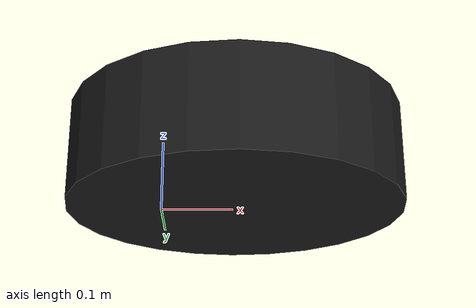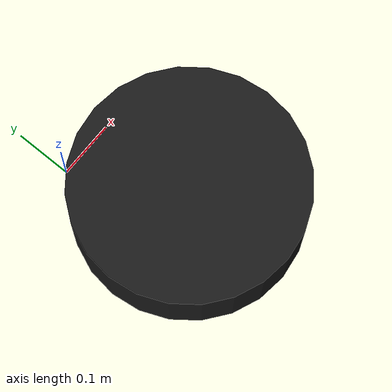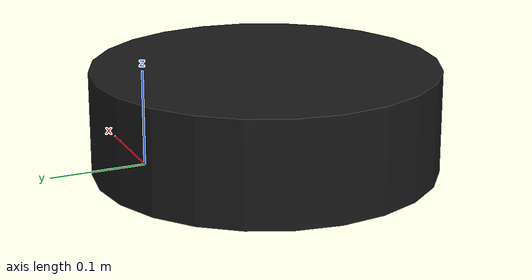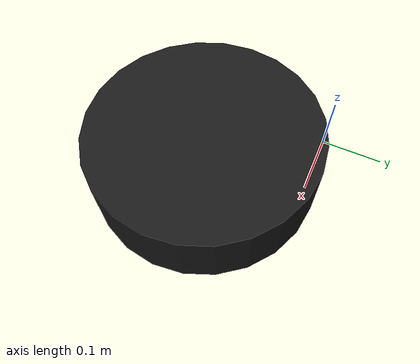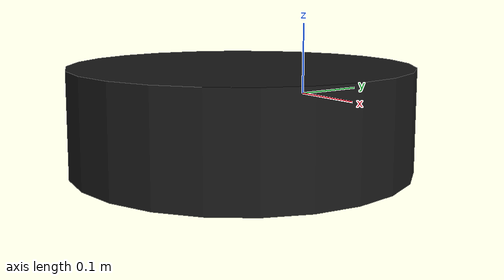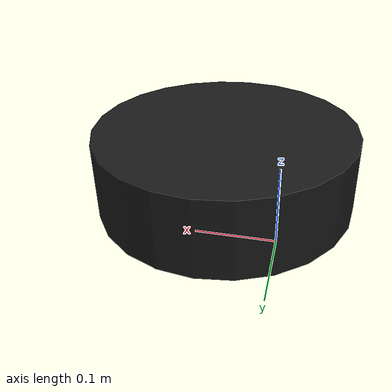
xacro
<?xml version="1.0"?>

<robot xmlns:xacro="http://www.ros.org/wiki/xacro"  name="abc">
    <xacro:include filename="inertial_macros.xacro"/>
   <link name="bb">
        <visual>
            <origin xyz="0.1 -0.18 0" rpy="0 0 1.57" />
            <geometry>
            <cylinder radius="0.20" length="0.12"/>
            </geometry>
            <material name="">
                <color rgba="0.1 0.1 0.1 1" />
            </material>
        </visual>
        <collision>
            <origin xyz="0 0 0.06" rpy="0 0 0" />
            <geometry>
                <cylinder radius="0.20" length="0.12"/>

            </geometry>
        </collision>
        <xacro:inertial_cylinder mass="4.0" length="0.12" radius="0.15">
            <origin xyz="0 0 0" rpy="0 0 0"/>
        </xacro:inertial_cylinder>
    </link>
</robot>

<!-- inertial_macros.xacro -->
<robot xmlns:xacro="http://www.ros.org/wiki/xacro" >

    <!-- Specify some standard inertial calculations https://en.wikipedia.org/wiki/List_of_moments_of_inertia -->
    <!-- These make use of xacro's mathematical functionality -->

    <xacro:macro name="inertial_sphere" params="mass radius *origin">
        <inertial>
            <xacro:insert_block name="origin"/>
            <mass value="${mass}" />
            <inertia ixx="${(2/5) * mass * (radius*radius)}" ixy="0.0" ixz="0.0"
                    iyy="${(2/5) * mass * (radius*radius)}" iyz="0.0"
                    izz="${(2/5) * mass * (radius*radius)}" />
        </inertial>
    </xacro:macro>

    <xacro:macro name="inertial_box" params="mass x y z *origin">
        <inertial>
            <xacro:insert_block name="origin"/>
            <mass value="${mass}" />
            <inertia ixx="${(1/12) * mass * (y*y+z*z)}" ixy="0.0" ixz="0.0"
                    iyy="${(1/12) * mass * (x*x+z*z)}" iyz="0.0"
                    izz="${(1/12) * mass * (x*x+y*y)}" />
            </inertial>
    </xacro:macro>

    <xacro:macro name="inertial_cylinder" params="mass length radius *origin">
        <inertial>
            <xacro:insert_block name="origin"/>
            <mass value="${mass}" />
            <inertia ixx="${(1/12) * mass * (3*radius*radius + length*length)}" ixy="0.0" ixz="0.0"
                    iyy="${(1/12) * mass * (3*radius*radius + length*length)}" iyz="0.0"
                    izz="${(1/2) * mass * (radius*radius)}" />
        </inertial>
    </xacro:macro>

</robot>
